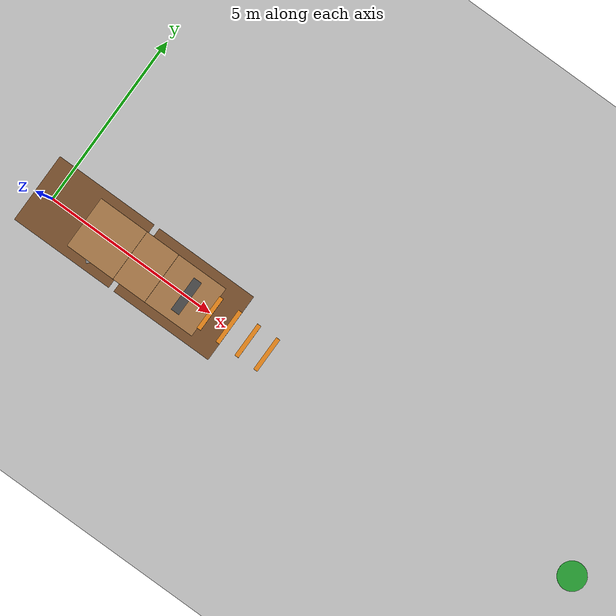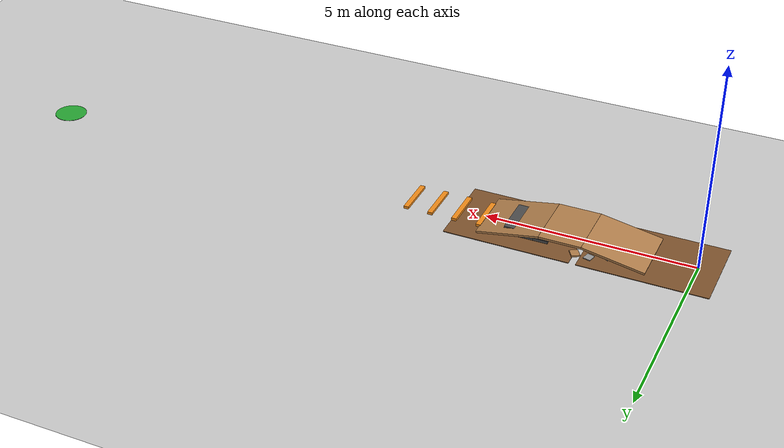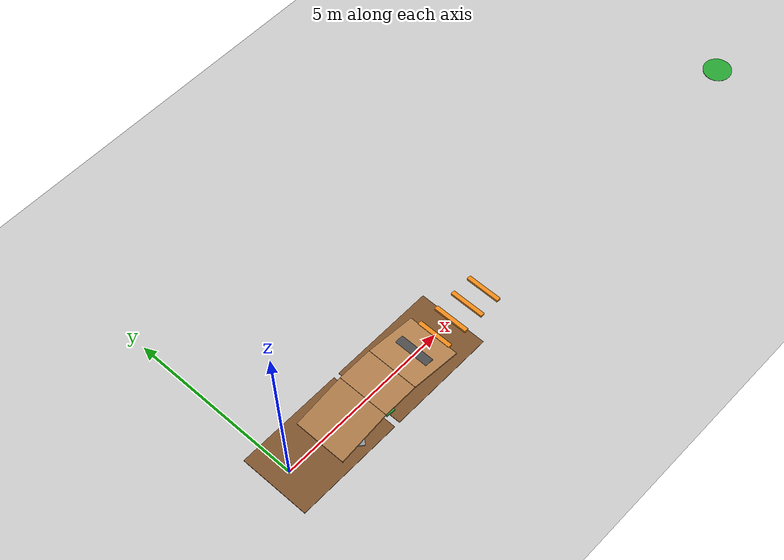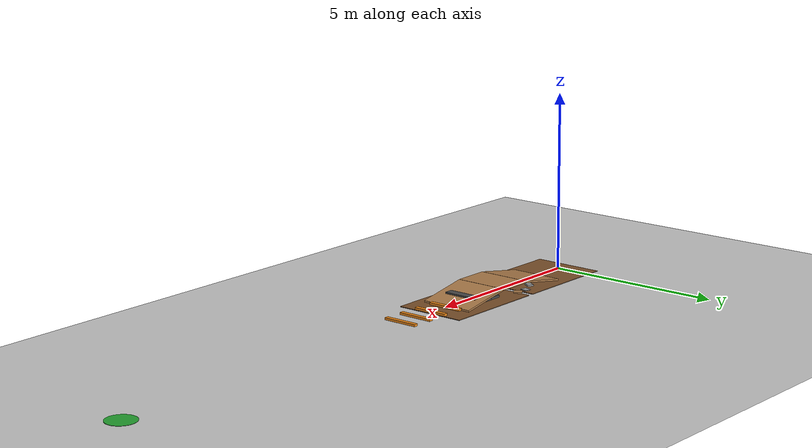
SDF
<?xml version="1.0" ?>
<!-- 由 omni_world.py 自动生成: scene=mixed seed=1 -->
<sdf version="1.5">
  <world name="mixed">
    <physics type="ode">
      <type>world</type>
      <max_step_size>0.001</max_step_size>
      <real_time_update_rate>1000</real_time_update_rate>
      <iters>500</iters>
    </physics>
    <include><uri>model://sun</uri></include>
    <include><uri>model://ground_plane</uri></include>
    <model name="mx_rough_0_0">
      <static>true</static>
      <pose>2.703 -0.612 0.020 0.0000 0.0000 1.4836</pose>
      <link name="link">
        <collision name="collision">
          <geometry><box><size>0.168 0.264 0.040</size></box></geometry>
          <surface><friction><ode><mu>1.0</mu><mu2>1.0</mu2></ode></friction></surface>
        </collision>
        <visual name="visual">
          <geometry><box><size>0.168 0.264 0.040</size></box></geometry>
          <material><script><uri>file://media/materials/scripts/gazebo.material</uri>
            <name>Gazebo/Green</name></script></material>
        </visual>
      </link>
    </model>
    <model name="mx_rough_0_1">
      <static>true</static>
      <pose>1.641 -0.660 0.024 0.0000 0.0000 2.3948</pose>
      <link name="link">
        <collision name="collision">
          <geometry><box><size>0.275 0.215 0.048</size></box></geometry>
          <surface><friction><ode><mu>1.0</mu><mu2>1.0</mu2></ode></friction></surface>
        </collision>
        <visual name="visual">
          <geometry><box><size>0.275 0.215 0.048</size></box></geometry>
          <material><script><uri>file://media/materials/scripts/gazebo.material</uri>
            <name>Gazebo/Grey</name></script></material>
        </visual>
      </link>
    </model>
    <model name="mx_rough_0_2">
      <static>true</static>
      <pose>1.899 0.423 0.022 0.0000 0.0000 0.9972</pose>
      <link name="link">
        <collision name="collision">
          <geometry><box><size>0.239 0.165 0.044</size></box></geometry>
          <surface><friction><ode><mu>1.0</mu><mu2>1.0</mu2></ode></friction></surface>
        </collision>
        <visual name="visual">
          <geometry><box><size>0.239 0.165 0.044</size></box></geometry>
          <material><script><uri>file://media/materials/scripts/gazebo.material</uri>
            <name>Gazebo/Grey</name></script></material>
        </visual>
      </link>
    </model>
    <model name="mx_rough_0_3">
      <static>true</static>
      <pose>2.312 0.615 0.010 0.0000 0.0000 1.3261</pose>
      <link name="link">
        <collision name="collision">
          <geometry><box><size>0.207 0.182 0.021</size></box></geometry>
          <surface><friction><ode><mu>1.0</mu><mu2>1.0</mu2></ode></friction></surface>
        </collision>
        <visual name="visual">
          <geometry><box><size>0.207 0.182 0.021</size></box></geometry>
          <material><script><uri>file://media/materials/scripts/gazebo.material</uri>
            <name>Gazebo/Grey</name></script></material>
        </visual>
      </link>
    </model>
    <model name="mx_rough_0_4">
      <static>true</static>
      <pose>2.646 0.615 0.019 0.0000 0.0000 2.1264</pose>
      <link name="link">
        <collision name="collision">
          <geometry><box><size>0.233 0.202 0.038</size></box></geometry>
          <surface><friction><ode><mu>1.0</mu><mu2>1.0</mu2></ode></friction></surface>
        </collision>
        <visual name="visual">
          <geometry><box><size>0.233 0.202 0.038</size></box></geometry>
          <material><script><uri>file://media/materials/scripts/gazebo.material</uri>
            <name>Gazebo/Wood</name></script></material>
        </visual>
      </link>
    </model>
    <model name="mx_step_1_0">
      <static>true</static>
      <pose>3.500 0.000 0.033 0.0000 0.0000 0.0000</pose>
      <link name="link">
        <collision name="collision">
          <geometry><box><size>0.350 1.000 0.065</size></box></geometry>
          <surface><friction><ode><mu>1.0</mu><mu2>1.0</mu2></ode></friction></surface>
        </collision>
        <visual name="visual">
          <geometry><box><size>0.350 1.000 0.065</size></box></geometry>
          <material><script><uri>file://media/materials/scripts/gazebo.material</uri>
            <name>Gazebo/DarkGrey</name></script></material>
        </visual>
      </link>
    </model>
    <model name="mx_step_1_1">
      <static>true</static>
      <pose>3.850 0.000 0.065 0.0000 0.0000 0.0000</pose>
      <link name="link">
        <collision name="collision">
          <geometry><box><size>0.350 1.000 0.130</size></box></geometry>
          <surface><friction><ode><mu>1.0</mu><mu2>1.0</mu2></ode></friction></surface>
        </collision>
        <visual name="visual">
          <geometry><box><size>0.350 1.000 0.130</size></box></geometry>
          <material><script><uri>file://media/materials/scripts/gazebo.material</uri>
            <name>Gazebo/DarkGrey</name></script></material>
        </visual>
      </link>
    </model>
    <model name="mx_step_1_2">
      <static>true</static>
      <pose>4.200 0.000 0.098 0.0000 0.0000 0.0000</pose>
      <link name="link">
        <collision name="collision">
          <geometry><box><size>0.350 1.000 0.195</size></box></geometry>
          <surface><friction><ode><mu>1.0</mu><mu2>1.0</mu2></ode></friction></surface>
        </collision>
        <visual name="visual">
          <geometry><box><size>0.350 1.000 0.195</size></box></geometry>
          <material><script><uri>file://media/materials/scripts/gazebo.material</uri>
            <name>Gazebo/DarkGrey</name></script></material>
        </visual>
      </link>
    </model>
    <model name="mx_bump_2_0">
      <static>true</static>
      <pose>5.000 0.000 0.033 0.0000 0.0000 0.0000</pose>
      <link name="link">
        <collision name="collision">
          <geometry><box><size>0.120 1.000 0.065</size></box></geometry>
          <surface><friction><ode><mu>1.0</mu><mu2>1.0</mu2></ode></friction></surface>
        </collision>
        <visual name="visual">
          <geometry><box><size>0.120 1.000 0.065</size></box></geometry>
          <material><script><uri>file://media/materials/scripts/gazebo.material</uri>
            <name>Gazebo/Orange</name></script></material>
        </visual>
      </link>
    </model>
    <model name="mx_bump_2_1">
      <static>true</static>
      <pose>5.600 0.000 0.033 0.0000 0.0000 0.0000</pose>
      <link name="link">
        <collision name="collision">
          <geometry><box><size>0.120 1.000 0.065</size></box></geometry>
          <surface><friction><ode><mu>1.0</mu><mu2>1.0</mu2></ode></friction></surface>
        </collision>
        <visual name="visual">
          <geometry><box><size>0.120 1.000 0.065</size></box></geometry>
          <material><script><uri>file://media/materials/scripts/gazebo.material</uri>
            <name>Gazebo/Orange</name></script></material>
        </visual>
      </link>
    </model>
    <model name="mx_bump_2_2">
      <static>true</static>
      <pose>6.200 0.000 0.033 0.0000 0.0000 0.0000</pose>
      <link name="link">
        <collision name="collision">
          <geometry><box><size>0.120 1.000 0.065</size></box></geometry>
          <surface><friction><ode><mu>1.0</mu><mu2>1.0</mu2></ode></friction></surface>
        </collision>
        <visual name="visual">
          <geometry><box><size>0.120 1.000 0.065</size></box></geometry>
          <material><script><uri>file://media/materials/scripts/gazebo.material</uri>
            <name>Gazebo/Orange</name></script></material>
        </visual>
      </link>
    </model>
    <model name="mx_bump_2_3">
      <static>true</static>
      <pose>6.800 0.000 0.033 0.0000 0.0000 0.0000</pose>
      <link name="link">
        <collision name="collision">
          <geometry><box><size>0.120 1.000 0.065</size></box></geometry>
          <surface><friction><ode><mu>1.0</mu><mu2>1.0</mu2></ode></friction></surface>
        </collision>
        <visual name="visual">
          <geometry><box><size>0.120 1.000 0.065</size></box></geometry>
          <material><script><uri>file://media/materials/scripts/gazebo.material</uri>
            <name>Gazebo/Orange</name></script></material>
        </visual>
      </link>
    </model>
    <model name="ramp_up">
      <static>true</static>
      <pose>1.739 0.000 0.155 0.0000 -0.1745 0.0000</pose>
      <link name="link">
        <collision name="collision">
          <geometry><box><size>1.500 1.500 0.050</size></box></geometry>
          <surface><friction><ode><mu>1.2</mu><mu2>1.2</mu2></ode></friction></surface>
        </collision>
        <visual name="visual">
          <geometry><box><size>1.500 1.500 0.050</size></box></geometry>
          <material><script><uri>file://media/materials/scripts/gazebo.material</uri>
            <name>Gazebo/Wood</name></script></material>
        </visual>
      </link>
    </model>
    <model name="platform">
      <static>true</static>
      <pose>2.977 0.000 0.285 0.0000 0.0000 0.0000</pose>
      <link name="link">
        <collision name="collision">
          <geometry><box><size>1.000 1.500 0.050</size></box></geometry>
          <surface><friction><ode><mu>1.2</mu><mu2>1.2</mu2></ode></friction></surface>
        </collision>
        <visual name="visual">
          <geometry><box><size>1.000 1.500 0.050</size></box></geometry>
          <material><script><uri>file://media/materials/scripts/gazebo.material</uri>
            <name>Gazebo/Wood</name></script></material>
        </visual>
      </link>
    </model>
    <model name="ramp_down">
      <static>true</static>
      <pose>4.216 0.000 0.155 0.0000 0.1745 0.0000</pose>
      <link name="link">
        <collision name="collision">
          <geometry><box><size>1.500 1.500 0.050</size></box></geometry>
          <surface><friction><ode><mu>1.2</mu><mu2>1.2</mu2></ode></friction></surface>
        </collision>
        <visual name="visual">
          <geometry><box><size>1.500 1.500 0.050</size></box></geometry>
          <material><script><uri>file://media/materials/scripts/gazebo.material</uri>
            <name>Gazebo/Wood</name></script></material>
        </visual>
      </link>
    </model>
    <model name="ground_a">
      <static>true</static>
      <pose>1.000 0.000 -0.025 0.0000 0.0000 0.0000</pose>
      <link name="link">
        <collision name="collision">
          <geometry><box><size>3.000 2.000 0.050</size></box></geometry>
          <surface><friction><ode><mu>1.0</mu><mu2>1.0</mu2></ode></friction></surface>
        </collision>
        <visual name="visual">
          <geometry><box><size>3.000 2.000 0.050</size></box></geometry>
          <material><script><uri>file://media/materials/scripts/gazebo.material</uri>
            <name>Gazebo/Brown</name></script></material>
        </visual>
      </link>
    </model>
    <model name="ground_b">
      <static>true</static>
      <pose>4.160 0.000 -0.025 0.0000 0.0000 0.0000</pose>
      <link name="link">
        <collision name="collision">
          <geometry><box><size>3.000 2.000 0.050</size></box></geometry>
          <surface><friction><ode><mu>1.0</mu><mu2>1.0</mu2></ode></friction></surface>
        </collision>
        <visual name="visual">
          <geometry><box><size>3.000 2.000 0.050</size></box></geometry>
          <material><script><uri>file://media/materials/scripts/gazebo.material</uri>
            <name>Gazebo/Brown</name></script></material>
        </visual>
      </link>
    </model>
    <model name="goal">
      <static>true</static>
      <pose>4.160 0.000 0.005 0 0 0</pose>
      <link name="link">
        <visual name="visual">
          <geometry><cylinder><radius>0.400</radius><length>0.01</length></cylinder></geometry>
          <material><script><uri>file://media/materials/scripts/gazebo.material</uri>
            <name>Gazebo/Green</name></script></material>
        </visual>
      </link>
    </model>
    <model name="goal">
      <static>true</static>
      <pose>16.500 0.000 0.005 0 0 0</pose>
      <link name="link">
        <visual name="visual">
          <geometry><cylinder><radius>0.400</radius><length>0.01</length></cylinder></geometry>
          <material><script><uri>file://media/materials/scripts/gazebo.material</uri>
            <name>Gazebo/Green</name></script></material>
        </visual>
      </link>
    </model>

  </world>
</sdf>
